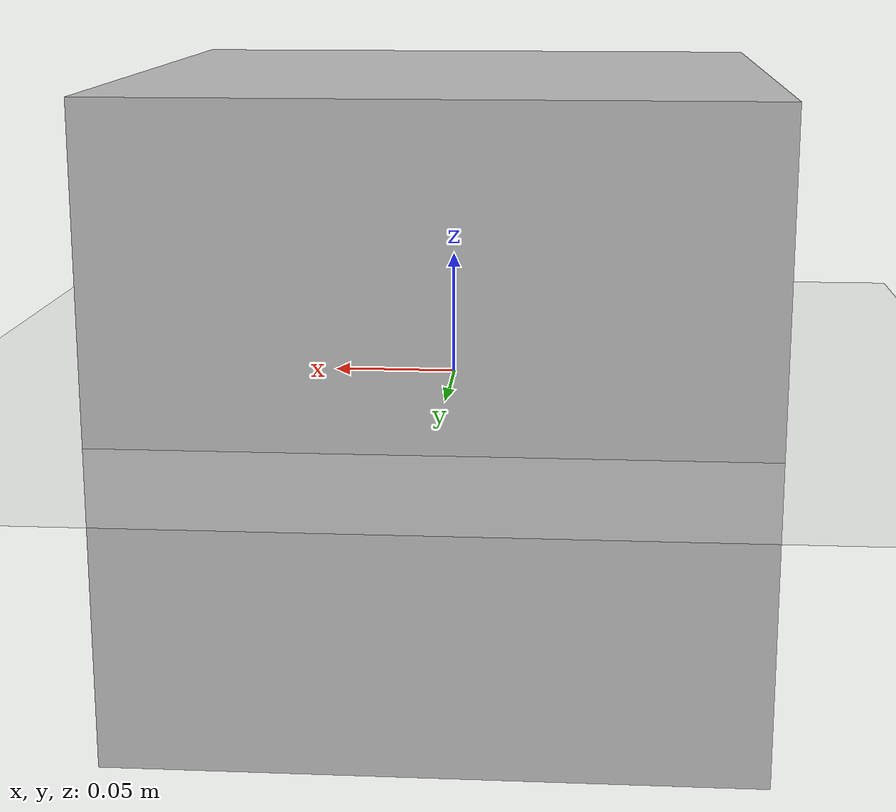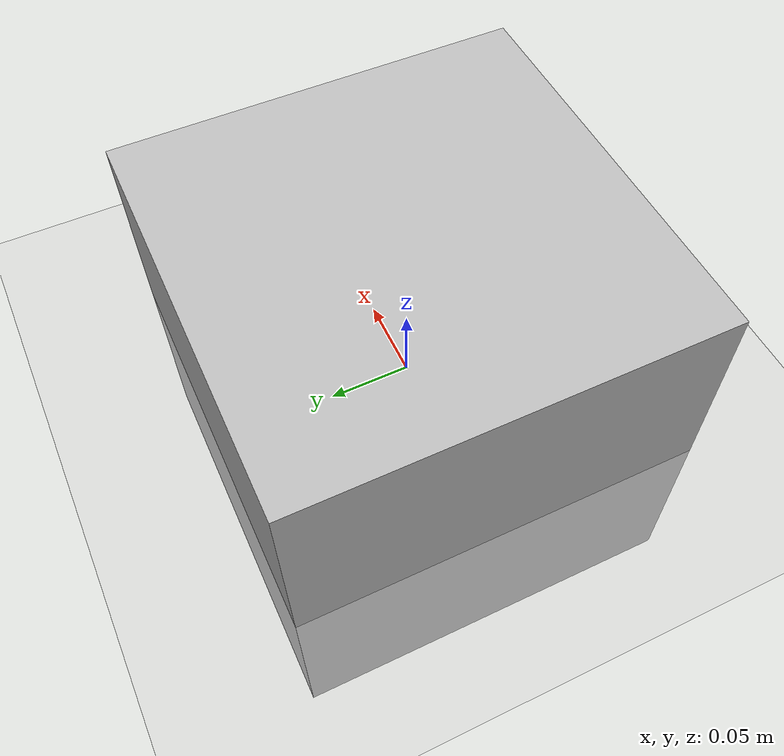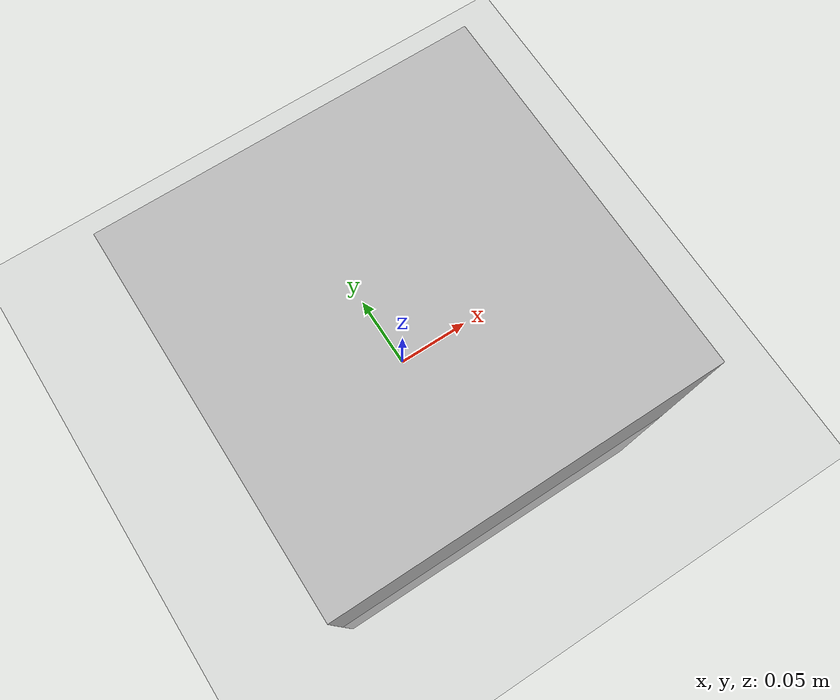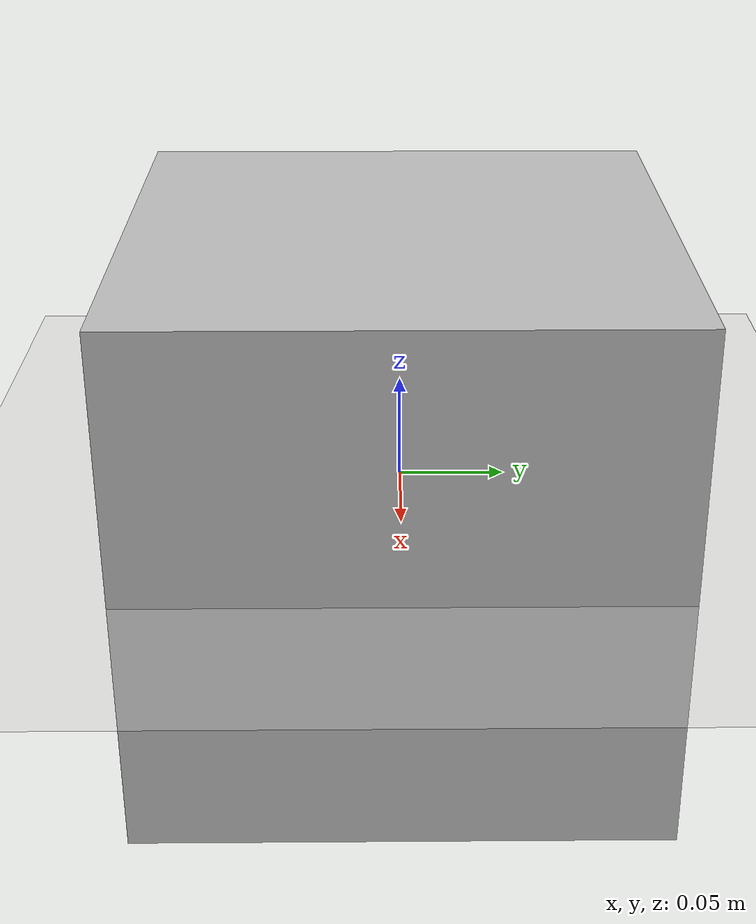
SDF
<?xml version="1.0"?>
<sdf version="1.4">
  <world name="default">
    <include>
      <uri>model://ground_plane</uri>
    </include>

    <include>
      <uri>model://sun</uri>
    </include>

    <include>
      <uri>model://box</uri>
    </include>

    <include>
      <uri>model://box1</uri>
    </include>

   <plugin name="DynamicJoint" filename="libDynamicJoint.so"/>

  </world>
</sdf>

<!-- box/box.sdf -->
<sdf version="1.4">
    <model name="box">
      <pose>0 0 0 0 0 0</pose>
      <static>true</static>
      <link name="link">
        <collision name="collision">
          <geometry>
            <box>
              <size>0.1 0.1 0.1</size>
            </box>
          </geometry>
        </collision>

        <visual name="boxVisual">
          <geometry>
            <box>
              <size>0.1 0.1 0.1</size>
            </box>
          </geometry>
        </visual>
      </link>

    </model>
</sdf>

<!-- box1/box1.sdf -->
<sdf version="1.4">
    <model name="box1">
      <pose>0 0 0 0 0 0</pose>
      <link name="link">
        <collision name="collision">
          <geometry>
            <box>
              <size>0.25 0.25 0.25</size>
            </box>
          </geometry>
        </collision>

        <visual name="visual">
          <geometry>
            <box>
              <size>0.25 0.25 0.25</size>
            </box>
          </geometry>
        </visual>
      </link>

    </model>
</sdf>
